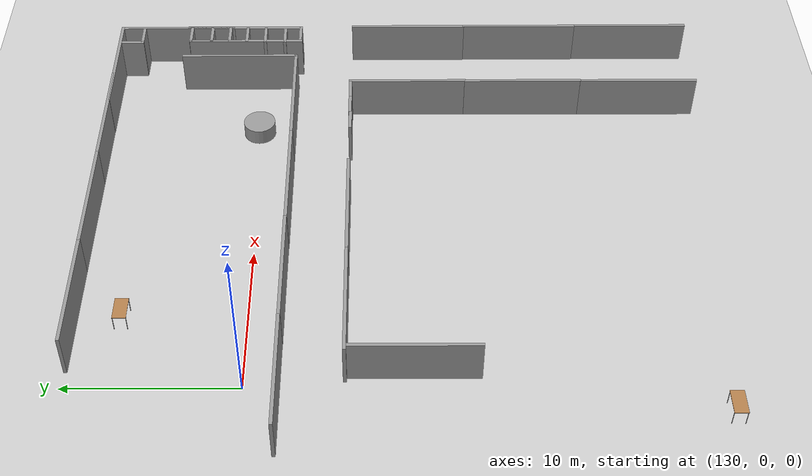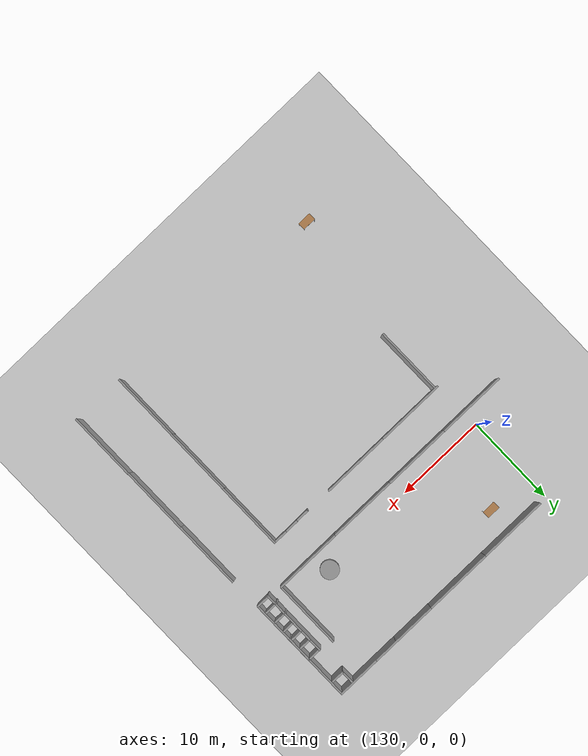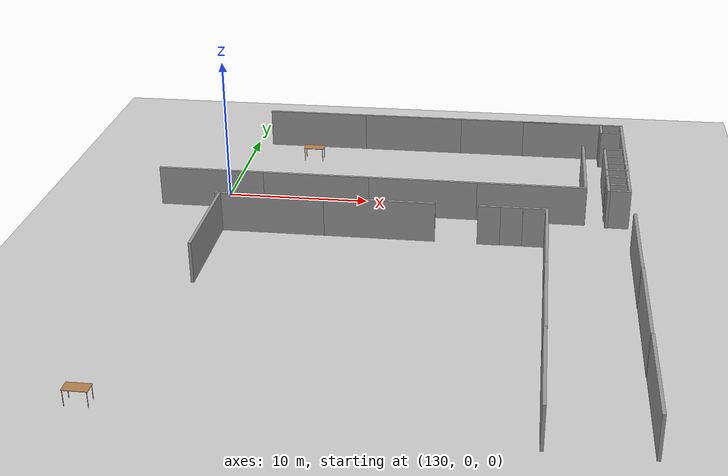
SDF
<sdf version="1.7">
 <world name="default">
  <model name="ground_plane">
   <static>1</static>
   <link name="link">
    <collision name="collision">
     <geometry><plane><normal>0 0 1</normal><size>100 100</size></plane></geometry>
     <surface>
      <contact><collide_bitmask>65535</collide_bitmask></contact>
      <friction><ode><mu>100</mu><mu2>50</mu2></ode></friction>
     </surface>
    </collision>
    <visual name="visual">
     <cast_shadows>0</cast_shadows>
     <geometry><plane><normal>0 0 1</normal><size>100 100</size></plane></geometry>
     <material>
      <script><uri>file://media/materials/scripts/gazebo.material</uri><name>Gazebo/Grey</name></script>
     </material>
    </visual>
   </link>
  </model>
  <model name="grey_wall_clone_1_clone_2_clone_clone_clone_clone_clone_clone_clone_3_clone_0_clone_0_clone_1">
   <static>1</static>
   <link name="link">
    <pose>0 0 1.4 0 -0 0</pose>
    <collision name="collision"><geometry><box><size>7.5 0.2 2.8</size></box></geometry></collision>
    <visual name="visual">
     <cast_shadows>0</cast_shadows>
     <geometry><box><size>7.5 0.2 2.8</size></box></geometry>
     <material>
      <script>
       <uri>model://grey_wall/materials/scripts</uri>
       <uri>model://grey_wall/materials/textures</uri>
       <name>vrc/grey_wall</name>
      </script>
     </material>
    </visual>
   </link>
   <pose>134.179 -5.57064 0 0 -0 0</pose>
  </model>
  <model name="grey_wall_clone_1_clone_2_clone_clone_clone_clone_clone_clone_clone_3_clone_0_clone_0_clone_2">
   <static>1</static>
   <link name="link">
    <pose>0 0 1.4 0 -0 0</pose>
    <collision name="collision"><geometry><box><size>7.5 0.2 2.8</size></box></geometry></collision>
    <visual name="visual">
     <cast_shadows>0</cast_shadows>
     <geometry><box><size>7.5 0.2 2.8</size></box></geometry>
     <material>
      <script>
       <uri>model://grey_wall/materials/scripts</uri>
       <uri>model://grey_wall/materials/textures</uri>
       <name>vrc/grey_wall</name>
      </script>
     </material>
    </visual>
   </link>
   <pose>141.615 -5.57143 0 0 -0 0</pose>
  </model>
  <model name="grey_wall_clone_2_clone_clone_clone_1_clone_clone_0_clone_1_clone_clone_clone_clone_clone_2_clone_clone_4_clone_1_clone_clone_clone_3_clone_0">
   <static>1</static>
   <link name="link">
    <pose>0 0 1.4 0 -0 0</pose>
    <collision name="collision"><geometry><box><size>7.5 0.2 2.8</size></box></geometry></collision>
    <visual name="visual">
     <cast_shadows>0</cast_shadows>
     <geometry><box><size>7.5 0.2 2.8</size></box></geometry>
     <material>
      <script>
       <uri>model://grey_wall/materials/scripts</uri>
       <uri>model://grey_wall/materials/textures</uri>
       <name>vrc/grey_wall</name>
      </script>
     </material>
    </visual>
   </link>
   <pose>152.723 -9.23495 0 0 0 -1.5708</pose>
  </model>
  <model name="grey_wall_clone_2_clone_clone_clone_1_clone_clone_0_clone_1_clone_clone_clone_clone_clone_2_clone_clone_4_clone_1_clone_clone_clone_3_clone_1">
   <static>1</static>
   <link name="link">
    <pose>0 0 1.4 0 -0 0</pose>
    <collision name="collision"><geometry><box><size>7.5 0.2 2.8</size></box></geometry></collision>
    <visual name="visual">
     <cast_shadows>0</cast_shadows>
     <geometry><box><size>7.5 0.2 2.8</size></box></geometry>
     <material>
      <script>
       <uri>model://grey_wall/materials/scripts</uri>
       <uri>model://grey_wall/materials/textures</uri>
       <name>vrc/grey_wall</name>
      </script>
     </material>
    </visual>
   </link>
   <pose>152.707 -16.6656 0 0 0 -1.5708</pose>
  </model>
  <model name="grey_wall_clone_2_clone_clone_clone_1_clone_clone_0_clone_1_clone_clone_clone_clone_clone_2_clone_clone_4_clone_1_clone_clone_clone_3_clone_2">
   <static>1</static>
   <link name="link">
    <pose>0 0 1.4 0 -0 0</pose>
    <collision name="collision"><geometry><box><size>7.5 0.2 2.8</size></box></geometry></collision>
    <visual name="visual">
     <cast_shadows>0</cast_shadows>
     <geometry><box><size>7.5 0.2 2.8</size></box></geometry>
     <material>
      <script>
       <uri>model://grey_wall/materials/scripts</uri>
       <uri>model://grey_wall/materials/textures</uri>
       <name>vrc/grey_wall</name>
      </script>
     </material>
    </visual>
   </link>
   <pose>152.688 -24.1224 0 0 0 -1.5708</pose>
  </model>
  <model name="half_wall_clone_0_clone_clone_clone_9_clone_1_clone_clone_1_clone">
   <link name="link">
    <pose>0 0 1.4 0 -0 0</pose>
    <inertial>
     <mass>1</mass>
     <inertia><ixx>1</ixx><ixy>0</ixy><ixz>0</ixz><iyy>1</iyy><iyz>0</iyz><izz>1</izz></inertia>
    </inertial>
    <visual name="visual">
     <cast_shadows>0</cast_shadows>
     <geometry><box><size>1.5 0.2 2.8</size></box></geometry>
     <material>
      <script>
       <uri>model://grey_wall/materials/scripts</uri>
       <uri>model://grey_wall/materials/textures</uri>
       <name>vrc/grey_wall</name>
      </script>
      <shader type="pixel"><normal_map>__default__</normal_map></shader>
      <ambient>1 1 1 1</ambient>
      <diffuse>1 1 1 1</diffuse>
      <specular>0 0 0 1</specular>
      <emissive>0 0 0 1</emissive>
     </material>
    </visual>
    <collision name="collision">
     <geometry><box><size>1.5 0.2 2.8</size></box></geometry>
     <surface>
      <friction>
       <ode><mu>1</mu><mu2>1</mu2><fdir1>0 0 0</fdir1><slip1>0</slip1><slip2>0</slip2></ode>
       <torsional>
        <coefficient>1</coefficient>
        <patch_radius>0</patch_radius>
        <surface_radius>0</surface_radius>
        <use_patch_radius>1</use_patch_radius>
        <ode><slip>0</slip></ode>
       </torsional>
      </friction>
      <bounce><restitution_coefficient>0</restitution_coefficient><threshold>1e+06</threshold></bounce>
      <contact>
       <collide_without_contact>0</collide_without_contact>
       <collide_without_contact_bitmask>1</collide_without_contact_bitmask>
       <collide_bitmask>1</collide_bitmask>
       <ode>
        <soft_cfm>0</soft_cfm>
        <soft_erp>0.2</soft_erp>
        <kp>1e+13</kp>
        <kd>1</kd>
        <max_vel>0.01</max_vel>
        <min_depth>0</min_depth>
       </ode>
       <bullet>
        <split_impulse>1</split_impulse>
        <split_impulse_penetration_threshold>-0.01</split_impulse_penetration_threshold>
        <soft_cfm>0</soft_cfm>
        <soft_erp>0.2</soft_erp>
        <kp>1e+13</kp>
        <kd>1</kd>
       </bullet>
      </contact>
     </surface>
    </collision>
   </link>
   <static>1</static>
   <pose>151.917 -5.58605 0 0 -0 3.14159</pose>
  </model>
  <model name="half_wall_clone_0_clone_clone_clone_9_clone_1_clone_clone_1_clone_0">
   <link name="link">
    <pose>0 0 1.4 0 -0 0</pose>
    <inertial>
     <mass>1</mass>
     <inertia><ixx>1</ixx><ixy>0</ixy><ixz>0</ixz><iyy>1</iyy><iyz>0</iyz><izz>1</izz></inertia>
    </inertial>
    <visual name="visual">
     <cast_shadows>0</cast_shadows>
     <geometry><box><size>1.5 0.2 2.8</size></box></geometry>
     <material>
      <script>
       <uri>model://grey_wall/materials/scripts</uri>
       <uri>model://grey_wall/materials/textures</uri>
       <name>vrc/grey_wall</name>
      </script>
      <shader type="pixel"><normal_map>__default__</normal_map></shader>
      <ambient>1 1 1 1</ambient>
      <diffuse>1 1 1 1</diffuse>
      <specular>0 0 0 1</specular>
      <emissive>0 0 0 1</emissive>
     </material>
    </visual>
    <collision name="collision">
     <geometry><box><size>1.5 0.2 2.8</size></box></geometry>
     <surface>
      <friction>
       <ode><mu>1</mu><mu2>1</mu2><fdir1>0 0 0</fdir1><slip1>0</slip1><slip2>0</slip2></ode>
       <torsional>
        <coefficient>1</coefficient>
        <patch_radius>0</patch_radius>
        <surface_radius>0</surface_radius>
        <use_patch_radius>1</use_patch_radius>
        <ode><slip>0</slip></ode>
       </torsional>
      </friction>
      <bounce><restitution_coefficient>0</restitution_coefficient><threshold>1e+06</threshold></bounce>
      <contact>
       <collide_without_contact>0</collide_without_contact>
       <collide_without_contact_bitmask>1</collide_without_contact_bitmask>
       <collide_bitmask>1</collide_bitmask>
       <ode>
        <soft_cfm>0</soft_cfm>
        <soft_erp>0.2</soft_erp>
        <kp>1e+13</kp>
        <kd>1</kd>
        <max_vel>0.01</max_vel>
        <min_depth>0</min_depth>
       </ode>
       <bullet>
        <split_impulse>1</split_impulse>
        <split_impulse_penetration_threshold>-0.01</split_impulse_penetration_threshold>
        <soft_cfm>0</soft_cfm>
        <soft_erp>0.2</soft_erp>
        <kp>1e+13</kp>
        <kd>1</kd>
       </bullet>
      </contact>
     </surface>
    </collision>
   </link>
   <static>1</static>
   <pose>150.406 -5.58918 0 0 -0 3.14159</pose>
  </model>
  <model name="half_wall_clone_0_clone_clone_clone_9_clone_1_clone_clone_1_clone_1">
   <link name="link">
    <pose>0 0 1.4 0 -0 0</pose>
    <inertial>
     <mass>1</mass>
     <inertia><ixx>1</ixx><ixy>0</ixy><ixz>0</ixz><iyy>1</iyy><iyz>0</iyz><izz>1</izz></inertia>
    </inertial>
    <visual name="visual">
     <cast_shadows>0</cast_shadows>
     <geometry><box><size>1.5 0.2 2.8</size></box></geometry>
     <material>
      <script>
       <uri>model://grey_wall/materials/scripts</uri>
       <uri>model://grey_wall/materials/textures</uri>
       <name>vrc/grey_wall</name>
      </script>
      <shader type="pixel"><normal_map>__default__</normal_map></shader>
      <ambient>1 1 1 1</ambient>
      <diffuse>1 1 1 1</diffuse>
      <specular>0 0 0 1</specular>
      <emissive>0 0 0 1</emissive>
     </material>
    </visual>
    <collision name="collision">
     <geometry><box><size>1.5 0.2 2.8</size></box></geometry>
     <surface>
      <friction>
       <ode><mu>1</mu><mu2>1</mu2><fdir1>0 0 0</fdir1><slip1>0</slip1><slip2>0</slip2></ode>
       <torsional>
        <coefficient>1</coefficient>
        <patch_radius>0</patch_radius>
        <surface_radius>0</surface_radius>
        <use_patch_radius>1</use_patch_radius>
        <ode><slip>0</slip></ode>
       </torsional>
      </friction>
      <bounce><restitution_coefficient>0</restitution_coefficient><threshold>1e+06</threshold></bounce>
      <contact>
       <collide_without_contact>0</collide_without_contact>
       <collide_without_contact_bitmask>1</collide_without_contact_bitmask>
       <collide_bitmask>1</collide_bitmask>
       <ode>
        <soft_cfm>0</soft_cfm>
        <soft_erp>0.2</soft_erp>
        <kp>1e+13</kp>
        <kd>1</kd>
        <max_vel>0.01</max_vel>
        <min_depth>0</min_depth>
       </ode>
       <bullet>
        <split_impulse>1</split_impulse>
        <split_impulse_penetration_threshold>-0.01</split_impulse_penetration_threshold>
        <soft_cfm>0</soft_cfm>
        <soft_erp>0.2</soft_erp>
        <kp>1e+13</kp>
        <kd>1</kd>
       </bullet>
      </contact>
     </surface>
    </collision>
   </link>
   <static>1</static>
   <pose>148.951 -5.61653 0 0 -0 3.14159</pose>
  </model>
  <model name="grey_wall_clone_2_clone_clone_clone_1_clone_clone_0_clone_1_clone_clone_clone_clone_clone_2_clone_clone_4_clone_1_clone_clone_clone_3_clone_clone">
   <static>1</static>
   <link name="link">
    <pose>0 0 1.4 0 -0 0</pose>
    <collision name="collision"><geometry><box><size>7.5 0.2 2.8</size></box></geometry></collision>
    <visual name="visual">
     <cast_shadows>0</cast_shadows>
     <geometry><box><size>7.5 0.2 2.8</size></box></geometry>
     <material>
      <script>
       <uri>model://grey_wall/materials/scripts</uri>
       <uri>model://grey_wall/materials/textures</uri>
       <name>vrc/grey_wall</name>
      </script>
     </material>
    </visual>
   </link>
   <pose>130.753 -9.34457 0 0 0 -1.5708</pose>
  </model>
  <model name="grey_wall_clone_1_clone_2_clone_clone_clone_clone_clone_clone_clone_3_clone_0_clone_0_clone_clone_2">
   <static>1</static>
   <link name="link">
    <pose>0 0 1.4 0 -0 0</pose>
    <collision name="collision"><geometry><box><size>7.5 0.2 2.8</size></box></geometry></collision>
    <visual name="visual">
     <cast_shadows>0</cast_shadows>
     <geometry><box><size>7.5 0.2 2.8</size></box></geometry>
     <material>
      <script>
       <uri>model://grey_wall/materials/scripts</uri>
       <uri>model://grey_wall/materials/textures</uri>
       <name>vrc/grey_wall</name>
      </script>
     </material>
    </visual>
   </link>
   <pose>129.285 -1.93941 0 0 -0 0</pose>
  </model>
  <model name="grey_wall_clone_1_clone_2_clone_clone_clone_clone_clone_clone_clone_3_clone_0_clone_0_clone_clone_3">
   <static>1</static>
   <link name="link">
    <pose>0 0 1.4 0 -0 0</pose>
    <collision name="collision"><geometry><box><size>7.5 0.2 2.8</size></box></geometry></collision>
    <visual name="visual">
     <cast_shadows>0</cast_shadows>
     <geometry><box><size>7.5 0.2 2.8</size></box></geometry>
     <material>
      <script>
       <uri>model://grey_wall/materials/scripts</uri>
       <uri>model://grey_wall/materials/textures</uri>
       <name>vrc/grey_wall</name>
      </script>
     </material>
    </visual>
   </link>
   <pose>136.726 -1.94807 0 0 -0 0</pose>
  </model>
  <model name="grey_wall_clone_1_clone_2_clone_clone_clone_clone_clone_clone_clone_3_clone_0_clone_0_clone_clone_4">
   <static>1</static>
   <link name="link">
    <pose>0 0 1.4 0 -0 0</pose>
    <collision name="collision"><geometry><box><size>7.5 0.2 2.8</size></box></geometry></collision>
    <visual name="visual">
     <cast_shadows>0</cast_shadows>
     <geometry><box><size>7.5 0.2 2.8</size></box></geometry>
     <material>
      <script>
       <uri>model://grey_wall/materials/scripts</uri>
       <uri>model://grey_wall/materials/textures</uri>
       <name>vrc/grey_wall</name>
      </script>
     </material>
    </visual>
   </link>
   <pose>144.188 -1.96511 0 0 -0 0</pose>
  </model>
  <model name="grey_wall_clone_1_clone_2_clone_clone_clone_clone_clone_clone_clone_3_clone_0_clone_0_clone_clone_5">
   <static>1</static>
   <link name="link">
    <pose>0 0 1.4 0 -0 0</pose>
    <collision name="collision"><geometry><box><size>7.5 0.2 2.8</size></box></geometry></collision>
    <visual name="visual">
     <cast_shadows>0</cast_shadows>
     <geometry><box><size>7.5 0.2 2.8</size></box></geometry>
     <material>
      <script>
       <uri>model://grey_wall/materials/scripts</uri>
       <uri>model://grey_wall/materials/textures</uri>
       <name>vrc/grey_wall</name>
      </script>
     </material>
    </visual>
   </link>
   <pose>151.648 -1.96189 0 0 -0 0</pose>
  </model>
  <model name="grey_wall_clone_1_clone_2_clone_clone_clone_clone_clone_clone_clone_3_clone_0_clone_0_clone_clone_11">
   <static>1</static>
   <link name="link">
    <pose>0 0 1.4 0 -0 0</pose>
    <collision name="collision"><geometry><box><size>7.5 0.2 2.8</size></box></geometry></collision>
    <visual name="visual">
     <cast_shadows>0</cast_shadows>
     <geometry><box><size>7.5 0.2 2.8</size></box></geometry>
     <material>
      <script>
       <uri>model://grey_wall/materials/scripts</uri>
       <uri>model://grey_wall/materials/textures</uri>
       <name>vrc/grey_wall</name>
      </script>
     </material>
    </visual>
   </link>
   <pose>134.857 9.78168 0 0 -0 0</pose>
  </model>
  <model name="grey_wall_clone_1_clone_2_clone_clone_clone_clone_clone_clone_clone_3_clone_0_clone_0_clone_clone_12">
   <static>1</static>
   <link name="link">
    <pose>0 0 1.4 0 -0 0</pose>
    <collision name="collision"><geometry><box><size>7.5 0.2 2.8</size></box></geometry></collision>
    <visual name="visual">
     <cast_shadows>0</cast_shadows>
     <geometry><box><size>7.5 0.2 2.8</size></box></geometry>
     <material>
      <script>
       <uri>model://grey_wall/materials/scripts</uri>
       <uri>model://grey_wall/materials/textures</uri>
       <name>vrc/grey_wall</name>
      </script>
     </material>
    </visual>
   </link>
   <pose>142.308 9.78207 0 0 -0 0</pose>
  </model>
  <model name="grey_wall_clone_1_clone_2_clone_clone_clone_clone_clone_clone_clone_3_clone_0_clone_0_clone_clone_13">
   <static>1</static>
   <link name="link">
    <pose>0 0 1.4 0 -0 0</pose>
    <collision name="collision"><geometry><box><size>7.5 0.2 2.8</size></box></geometry></collision>
    <visual name="visual">
     <cast_shadows>0</cast_shadows>
     <geometry><box><size>7.5 0.2 2.8</size></box></geometry>
     <material>
      <script>
       <uri>model://grey_wall/materials/scripts</uri>
       <uri>model://grey_wall/materials/textures</uri>
       <name>vrc/grey_wall</name>
      </script>
     </material>
    </visual>
   </link>
   <pose>149.795 9.78309 0 0 -0 0</pose>
  </model>
  <model name="grey_wall_clone_1_clone_2_clone_clone_clone_clone_clone_clone_clone_3_clone_0_clone_0_clone_clone_14">
   <static>1</static>
   <link name="link">
    <pose>0 0 1.4 0 -0 0</pose>
    <collision name="collision"><geometry><box><size>7.5 0.2 2.8</size></box></geometry></collision>
    <visual name="visual">
     <cast_shadows>0</cast_shadows>
     <geometry><box><size>7.5 0.2 2.8</size></box></geometry>
     <material>
      <script>
       <uri>model://grey_wall/materials/scripts</uri>
       <uri>model://grey_wall/materials/textures</uri>
       <name>vrc/grey_wall</name>
      </script>
     </material>
    </visual>
   </link>
   <pose>154.606 9.77001 0 0 -0 0</pose>
  </model>
  <model name="grey_wall_clone_2_clone_clone_clone_1_clone_clone_0_clone_1_clone_clone_clone_clone_clone_2_clone_clone_4_clone_1_clone_clone_clone_3_clone_0_clone">
   <static>1</static>
   <link name="link">
    <pose>0 0 1.4 0 -0 0</pose>
    <collision name="collision"><geometry><box><size>7.5 0.2 2.8</size></box></geometry></collision>
    <visual name="visual">
     <cast_shadows>0</cast_shadows>
     <geometry><box><size>7.5 0.2 2.8</size></box></geometry>
     <material>
      <script>
       <uri>model://grey_wall/materials/scripts</uri>
       <uri>model://grey_wall/materials/textures</uri>
       <name>vrc/grey_wall</name>
      </script>
     </material>
    </visual>
   </link>
   <pose>155.32 1.74851 0 0 0 -1.5708</pose>
  </model>
  <model name="grey_wall_clone_2_clone_clone_clone_1_clone_clone_0_clone_1_clone_clone_clone_clone_clone_2_clone_clone_4_clone_1_clone_clone_clone_3_clone_0_clone_0">
   <static>1</static>
   <link name="link">
    <pose>0 0 1.4 0 -0 0</pose>
    <collision name="collision"><geometry><box><size>7.5 0.2 2.8</size></box></geometry></collision>
    <visual name="visual">
     <cast_shadows>0</cast_shadows>
     <geometry><box><size>7.5 0.2 2.8</size></box></geometry>
     <material>
      <script>
       <uri>model://grey_wall/materials/scripts</uri>
       <uri>model://grey_wall/materials/textures</uri>
       <name>vrc/grey_wall</name>
      </script>
     </material>
    </visual>
   </link>
   <pose>158.273 6.01296 0 0 0 -1.5708</pose>
  </model>
  <model name="grey_wall_clone_2_clone_clone_clone_1_clone_clone_0_clone_1_clone_clone_clone_clone_clone_2_clone_clone_4_clone_1_clone_clone_clone_3_clone_0_clone_1">
   <static>1</static>
   <link name="link">
    <pose>0 0 1.4 0 -0 0</pose>
    <collision name="collision"><geometry><box><size>7.5 0.2 2.8</size></box></geometry></collision>
    <visual name="visual">
     <cast_shadows>0</cast_shadows>
     <geometry><box><size>7.5 0.2 2.8</size></box></geometry>
     <material>
      <script>
       <uri>model://grey_wall/materials/scripts</uri>
       <uri>model://grey_wall/materials/textures</uri>
       <name>vrc/grey_wall</name>
      </script>
     </material>
    </visual>
   </link>
   <pose>158.287 1.6348 0 0 0 -1.5708</pose>
  </model>
  <model name="half_wall_clone_0_clone_clone_clone_9_clone_1_clone_clone_clone_1_clone">
   <link name="link">
    <pose>0 0 1.4 0 -0 0</pose>
    <inertial>
     <mass>1</mass>
     <inertia><ixx>1</ixx><ixy>0</ixy><ixz>0</ixz><iyy>1</iyy><iyz>0</iyz><izz>1</izz></inertia>
    </inertial>
    <visual name="visual">
     <cast_shadows>0</cast_shadows>
     <geometry><box><size>1.5 0.2 2.8</size></box></geometry>
     <material>
      <script>
       <uri>model://grey_wall/materials/scripts</uri>
       <uri>model://grey_wall/materials/textures</uri>
       <name>vrc/grey_wall</name>
      </script>
      <shader type="pixel"><normal_map>__default__</normal_map></shader>
      <ambient>1 1 1 1</ambient>
      <diffuse>1 1 1 1</diffuse>
      <specular>0 0 0 1</specular>
      <emissive>0 0 0 1</emissive>
     </material>
    </visual>
    <collision name="collision">
     <geometry><box><size>1.5 0.2 2.8</size></box></geometry>
     <surface>
      <friction>
       <ode><mu>1</mu><mu2>1</mu2><fdir1>0 0 0</fdir1><slip1>0</slip1><slip2>0</slip2></ode>
       <torsional>
        <coefficient>1</coefficient>
        <patch_radius>0</patch_radius>
        <surface_radius>0</surface_radius>
        <use_patch_radius>1</use_patch_radius>
        <ode><slip>0</slip></ode>
       </torsional>
      </friction>
      <bounce><restitution_coefficient>0</restitution_coefficient><threshold>1e+06</threshold></bounce>
      <contact>
       <collide_without_contact>0</collide_without_contact>
       <collide_without_contact_bitmask>1</collide_without_contact_bitmask>
       <collide_bitmask>1</collide_bitmask>
       <ode>
        <soft_cfm>0</soft_cfm>
        <soft_erp>0.2</soft_erp>
        <kp>1e+13</kp>
        <kd>1</kd>
        <max_vel>0.01</max_vel>
        <min_depth>0</min_depth>
       </ode>
       <bullet>
        <split_impulse>1</split_impulse>
        <split_impulse_penetration_threshold>-0.01</split_impulse_penetration_threshold>
        <soft_cfm>0</soft_cfm>
        <soft_erp>0.2</soft_erp>
        <kp>1e+13</kp>
        <kd>1</kd>
       </bullet>
      </contact>
     </surface>
    </collision>
   </link>
   <static>1</static>
   <pose>157.468 8.29059 0 0 -0 3.14159</pose>
  </model>
  <model name="half_wall_clone_0_clone_clone_clone_9_clone_1_clone_clone_clone_1_clone_0">
   <link name="link">
    <pose>0 0 1.4 0 -0 0</pose>
    <inertial>
     <mass>1</mass>
     <inertia><ixx>1</ixx><ixy>0</ixy><ixz>0</ixz><iyy>1</iyy><iyz>0</iyz><izz>1</izz></inertia>
    </inertial>
    <visual name="visual">
     <cast_shadows>0</cast_shadows>
     <geometry><box><size>1.5 0.2 2.8</size></box></geometry>
     <material>
      <script>
       <uri>model://grey_wall/materials/scripts</uri>
       <uri>model://grey_wall/materials/textures</uri>
       <name>vrc/grey_wall</name>
      </script>
      <shader type="pixel"><normal_map>__default__</normal_map></shader>
      <ambient>1 1 1 1</ambient>
      <diffuse>1 1 1 1</diffuse>
      <specular>0 0 0 1</specular>
      <emissive>0 0 0 1</emissive>
     </material>
    </visual>
    <collision name="collision">
     <geometry><box><size>1.5 0.2 2.8</size></box></geometry>
     <surface>
      <friction>
       <ode><mu>1</mu><mu2>1</mu2><fdir1>0 0 0</fdir1><slip1>0</slip1><slip2>0</slip2></ode>
       <torsional>
        <coefficient>1</coefficient>
        <patch_radius>0</patch_radius>
        <surface_radius>0</surface_radius>
        <use_patch_radius>1</use_patch_radius>
        <ode><slip>0</slip></ode>
       </torsional>
      </friction>
      <bounce><restitution_coefficient>0</restitution_coefficient><threshold>1e+06</threshold></bounce>
      <contact>
       <collide_without_contact>0</collide_without_contact>
       <collide_without_contact_bitmask>1</collide_without_contact_bitmask>
       <collide_bitmask>1</collide_bitmask>
       <ode>
        <soft_cfm>0</soft_cfm>
        <soft_erp>0.2</soft_erp>
        <kp>1e+13</kp>
        <kd>1</kd>
        <max_vel>0.01</max_vel>
        <min_depth>0</min_depth>
       </ode>
       <bullet>
        <split_impulse>1</split_impulse>
        <split_impulse_penetration_threshold>-0.01</split_impulse_penetration_threshold>
        <soft_cfm>0</soft_cfm>
        <soft_erp>0.2</soft_erp>
        <kp>1e+13</kp>
        <kd>1</kd>
       </bullet>
      </contact>
     </surface>
    </collision>
   </link>
   <static>1</static>
   <pose>156.739 8.94676 0 0 -0 1.57079</pose>
  </model>
  <model name="half_wall_clone_0_clone_clone_clone_9_clone_1_clone_clone_clone_1_clone_1">
   <link name="link">
    <pose>0 0 1.4 0 -0 0</pose>
    <inertial>
     <mass>1</mass>
     <inertia><ixx>1</ixx><ixy>0</ixy><ixz>0</ixz><iyy>1</iyy><iyz>0</iyz><izz>1</izz></inertia>
    </inertial>
    <visual name="visual">
     <cast_shadows>0</cast_shadows>
     <geometry><box><size>1.5 0.2 2.8</size></box></geometry>
     <material>
      <script>
       <uri>model://grey_wall/materials/scripts</uri>
       <uri>model://grey_wall/materials/textures</uri>
       <name>vrc/grey_wall</name>
      </script>
      <shader type="pixel"><normal_map>__default__</normal_map></shader>
      <ambient>1 1 1 1</ambient>
      <diffuse>1 1 1 1</diffuse>
      <specular>0 0 0 1</specular>
      <emissive>0 0 0 1</emissive>
     </material>
    </visual>
    <collision name="collision">
     <geometry><box><size>1.5 0.2 2.8</size></box></geometry>
     <surface>
      <friction>
       <ode><mu>1</mu><mu2>1</mu2><fdir1>0 0 0</fdir1><slip1>0</slip1><slip2>0</slip2></ode>
       <torsional>
        <coefficient>1</coefficient>
        <patch_radius>0</patch_radius>
        <surface_radius>0</surface_radius>
        <use_patch_radius>1</use_patch_radius>
        <ode><slip>0</slip></ode>
       </torsional>
      </friction>
      <bounce><restitution_coefficient>0</restitution_coefficient><threshold>1e+06</threshold></bounce>
      <contact>
       <collide_without_contact>0</collide_without_contact>
       <collide_without_contact_bitmask>1</collide_without_contact_bitmask>
       <collide_bitmask>1</collide_bitmask>
       <ode>
        <soft_cfm>0</soft_cfm>
        <soft_erp>0.2</soft_erp>
        <kp>1e+13</kp>
        <kd>1</kd>
        <max_vel>0.01</max_vel>
        <min_depth>0</min_depth>
       </ode>
       <bullet>
        <split_impulse>1</split_impulse>
        <split_impulse_penetration_threshold>-0.01</split_impulse_penetration_threshold>
        <soft_cfm>0</soft_cfm>
        <soft_erp>0.2</soft_erp>
        <kp>1e+13</kp>
        <kd>1</kd>
       </bullet>
      </contact>
     </surface>
    </collision>
   </link>
   <static>1</static>
   <pose>157.566 5.10254 0 0 -0 3.14159</pose>
  </model>
  <model name="half_wall_clone_0_clone_clone_clone_9_clone_1_clone_clone_clone_1_clone_2">
   <link name="link">
    <pose>0 0 1.4 0 -0 0</pose>
    <inertial>
     <mass>1</mass>
     <inertia><ixx>1</ixx><ixy>0</ixy><ixz>0</ixz><iyy>1</iyy><iyz>0</iyz><izz>1</izz></inertia>
    </inertial>
    <visual name="visual">
     <cast_shadows>0</cast_shadows>
     <geometry><box><size>1.5 0.2 2.8</size></box></geometry>
     <material>
      <script>
       <uri>model://grey_wall/materials/scripts</uri>
       <uri>model://grey_wall/materials/textures</uri>
       <name>vrc/grey_wall</name>
      </script>
      <shader type="pixel"><normal_map>__default__</normal_map></shader>
      <ambient>1 1 1 1</ambient>
      <diffuse>1 1 1 1</diffuse>
      <specular>0 0 0 1</specular>
      <emissive>0 0 0 1</emissive>
     </material>
    </visual>
    <collision name="collision">
     <geometry><box><size>1.5 0.2 2.8</size></box></geometry>
     <surface>
      <friction>
       <ode><mu>1</mu><mu2>1</mu2><fdir1>0 0 0</fdir1><slip1>0</slip1><slip2>0</slip2></ode>
       <torsional>
        <coefficient>1</coefficient>
        <patch_radius>0</patch_radius>
        <surface_radius>0</surface_radius>
        <use_patch_radius>1</use_patch_radius>
        <ode><slip>0</slip></ode>
       </torsional>
      </friction>
      <bounce><restitution_coefficient>0</restitution_coefficient><threshold>1e+06</threshold></bounce>
      <contact>
       <collide_without_contact>0</collide_without_contact>
       <collide_without_contact_bitmask>1</collide_without_contact_bitmask>
       <collide_bitmask>1</collide_bitmask>
       <ode>
        <soft_cfm>0</soft_cfm>
        <soft_erp>0.2</soft_erp>
        <kp>1e+13</kp>
        <kd>1</kd>
        <max_vel>0.01</max_vel>
        <min_depth>0</min_depth>
       </ode>
       <bullet>
        <split_impulse>1</split_impulse>
        <split_impulse_penetration_threshold>-0.01</split_impulse_penetration_threshold>
        <soft_cfm>0</soft_cfm>
        <soft_erp>0.2</soft_erp>
        <kp>1e+13</kp>
        <kd>1</kd>
       </bullet>
      </contact>
     </surface>
    </collision>
   </link>
   <static>1</static>
   <pose>157.566 3.72366 0 0 -0 3.14159</pose>
  </model>
  <model name="half_wall_clone_0_clone_clone_clone_9_clone_1_clone_clone_clone_1_clone_3">
   <link name="link">
    <pose>0 0 1.4 0 -0 0</pose>
    <inertial>
     <mass>1</mass>
     <inertia><ixx>1</ixx><ixy>0</ixy><ixz>0</ixz><iyy>1</iyy><iyz>0</iyz><izz>1</izz></inertia>
    </inertial>
    <visual name="visual">
     <cast_shadows>0</cast_shadows>
     <geometry><box><size>1.5 0.2 2.8</size></box></geometry>
     <material>
      <script>
       <uri>model://grey_wall/materials/scripts</uri>
       <uri>model://grey_wall/materials/textures</uri>
       <name>vrc/grey_wall</name>
      </script>
      <shader type="pixel"><normal_map>__default__</normal_map></shader>
      <ambient>1 1 1 1</ambient>
      <diffuse>1 1 1 1</diffuse>
      <specular>0 0 0 1</specular>
      <emissive>0 0 0 1</emissive>
     </material>
    </visual>
    <collision name="collision">
     <geometry><box><size>1.5 0.2 2.8</size></box></geometry>
     <surface>
      <friction>
       <ode><mu>1</mu><mu2>1</mu2><fdir1>0 0 0</fdir1><slip1>0</slip1><slip2>0</slip2></ode>
       <torsional>
        <coefficient>1</coefficient>
        <patch_radius>0</patch_radius>
        <surface_radius>0</surface_radius>
        <use_patch_radius>1</use_patch_radius>
        <ode><slip>0</slip></ode>
       </torsional>
      </friction>
      <bounce><restitution_coefficient>0</restitution_coefficient><threshold>1e+06</threshold></bounce>
      <contact>
       <collide_without_contact>0</collide_without_contact>
       <collide_without_contact_bitmask>1</collide_without_contact_bitmask>
       <collide_bitmask>1</collide_bitmask>
       <ode>
        <soft_cfm>0</soft_cfm>
        <soft_erp>0.2</soft_erp>
        <kp>1e+13</kp>
        <kd>1</kd>
        <max_vel>0.01</max_vel>
        <min_depth>0</min_depth>
       </ode>
       <bullet>
        <split_impulse>1</split_impulse>
        <split_impulse_penetration_threshold>-0.01</split_impulse_penetration_threshold>
        <soft_cfm>0</soft_cfm>
        <soft_erp>0.2</soft_erp>
        <kp>1e+13</kp>
        <kd>1</kd>
       </bullet>
      </contact>
     </surface>
    </collision>
   </link>
   <static>1</static>
   <pose>157.576 2.52987 0 0 -0 3.14159</pose>
  </model>
  <model name="half_wall_clone_0_clone_clone_clone_9_clone_1_clone_clone_clone_1_clone_4">
   <link name="link">
    <pose>0 0 1.4 0 -0 0</pose>
    <inertial>
     <mass>1</mass>
     <inertia><ixx>1</ixx><ixy>0</ixy><ixz>0</ixz><iyy>1</iyy><iyz>0</iyz><izz>1</izz></inertia>
    </inertial>
    <visual name="visual">
     <cast_shadows>0</cast_shadows>
     <geometry><box><size>1.5 0.2 2.8</size></box></geometry>
     <material>
      <script>
       <uri>model://grey_wall/materials/scripts</uri>
       <uri>model://grey_wall/materials/textures</uri>
       <name>vrc/grey_wall</name>
      </script>
      <shader type="pixel"><normal_map>__default__</normal_map></shader>
      <ambient>1 1 1 1</ambient>
      <diffuse>1 1 1 1</diffuse>
      <specular>0 0 0 1</specular>
      <emissive>0 0 0 1</emissive>
     </material>
    </visual>
    <collision name="collision">
     <geometry><box><size>1.5 0.2 2.8</size></box></geometry>
     <surface>
      <friction>
       <ode><mu>1</mu><mu2>1</mu2><fdir1>0 0 0</fdir1><slip1>0</slip1><slip2>0</slip2></ode>
       <torsional>
        <coefficient>1</coefficient>
        <patch_radius>0</patch_radius>
        <surface_radius>0</surface_radius>
        <use_patch_radius>1</use_patch_radius>
        <ode><slip>0</slip></ode>
       </torsional>
      </friction>
      <bounce><restitution_coefficient>0</restitution_coefficient><threshold>1e+06</threshold></bounce>
      <contact>
       <collide_without_contact>0</collide_without_contact>
       <collide_without_contact_bitmask>1</collide_without_contact_bitmask>
       <collide_bitmask>1</collide_bitmask>
       <ode>
        <soft_cfm>0</soft_cfm>
        <soft_erp>0.2</soft_erp>
        <kp>1e+13</kp>
        <kd>1</kd>
        <max_vel>0.01</max_vel>
        <min_depth>0</min_depth>
       </ode>
       <bullet>
        <split_impulse>1</split_impulse>
        <split_impulse_penetration_threshold>-0.01</split_impulse_penetration_threshold>
        <soft_cfm>0</soft_cfm>
        <soft_erp>0.2</soft_erp>
        <kp>1e+13</kp>
        <kd>1</kd>
       </bullet>
      </contact>
     </surface>
    </collision>
   </link>
   <static>1</static>
   <pose>157.55 1.37724 0 0 -0 3.14159</pose>
  </model>
  <model name="half_wall_clone_0_clone_clone_clone_9_clone_1_clone_clone_clone_1_clone_5">
   <link name="link">
    <pose>0 0 1.4 0 -0 0</pose>
    <inertial>
     <mass>1</mass>
     <inertia><ixx>1</ixx><ixy>0</ixy><ixz>0</ixz><iyy>1</iyy><iyz>0</iyz><izz>1</izz></inertia>
    </inertial>
    <visual name="visual">
     <cast_shadows>0</cast_shadows>
     <geometry><box><size>1.5 0.2 2.8</size></box></geometry>
     <material>
      <script>
       <uri>model://grey_wall/materials/scripts</uri>
       <uri>model://grey_wall/materials/textures</uri>
       <name>vrc/grey_wall</name>
      </script>
      <shader type="pixel"><normal_map>__default__</normal_map></shader>
      <ambient>1 1 1 1</ambient>
      <diffuse>1 1 1 1</diffuse>
      <specular>0 0 0 1</specular>
      <emissive>0 0 0 1</emissive>
     </material>
    </visual>
    <collision name="collision">
     <geometry><box><size>1.5 0.2 2.8</size></box></geometry>
     <surface>
      <friction>
       <ode><mu>1</mu><mu2>1</mu2><fdir1>0 0 0</fdir1><slip1>0</slip1><slip2>0</slip2></ode>
       <torsional>
        <coefficient>1</coefficient>
        <patch_radius>0</patch_radius>
        <surface_radius>0</surface_radius>
        <use_patch_radius>1</use_patch_radius>
        <ode><slip>0</slip></ode>
       </torsional>
      </friction>
      <bounce><restitution_coefficient>0</restitution_coefficient><threshold>1e+06</threshold></bounce>
      <contact>
       <collide_without_contact>0</collide_without_contact>
       <collide_without_contact_bitmask>1</collide_without_contact_bitmask>
       <collide_bitmask>1</collide_bitmask>
       <ode>
        <soft_cfm>0</soft_cfm>
        <soft_erp>0.2</soft_erp>
        <kp>1e+13</kp>
        <kd>1</kd>
        <max_vel>0.01</max_vel>
        <min_depth>0</min_depth>
       </ode>
       <bullet>
        <split_impulse>1</split_impulse>
        <split_impulse_penetration_threshold>-0.01</split_impulse_penetration_threshold>
        <soft_cfm>0</soft_cfm>
        <soft_erp>0.2</soft_erp>
        <kp>1e+13</kp>
        <kd>1</kd>
       </bullet>
      </contact>
     </surface>
    </collision>
   </link>
   <static>1</static>
   <pose>157.509 0.155126 0 0 -0 3.14159</pose>
  </model>
  <model name="half_wall_clone_0_clone_clone_clone_9_clone_1_clone_clone_clone_1_clone_6">
   <link name="link">
    <pose>0 0 1.4 0 -0 0</pose>
    <inertial>
     <mass>1</mass>
     <inertia><ixx>1</ixx><ixy>0</ixy><ixz>0</ixz><iyy>1</iyy><iyz>0</iyz><izz>1</izz></inertia>
    </inertial>
    <visual name="visual">
     <cast_shadows>0</cast_shadows>
     <geometry><box><size>1.5 0.2 2.8</size></box></geometry>
     <material>
      <script>
       <uri>model://grey_wall/materials/scripts</uri>
       <uri>model://grey_wall/materials/textures</uri>
       <name>vrc/grey_wall</name>
      </script>
      <shader type="pixel"><normal_map>__default__</normal_map></shader>
      <ambient>1 1 1 1</ambient>
      <diffuse>1 1 1 1</diffuse>
      <specular>0 0 0 1</specular>
      <emissive>0 0 0 1</emissive>
     </material>
    </visual>
    <collision name="collision">
     <geometry><box><size>1.5 0.2 2.8</size></box></geometry>
     <surface>
      <friction>
       <ode><mu>1</mu><mu2>1</mu2><fdir1>0 0 0</fdir1><slip1>0</slip1><slip2>0</slip2></ode>
       <torsional>
        <coefficient>1</coefficient>
        <patch_radius>0</patch_radius>
        <surface_radius>0</surface_radius>
        <use_patch_radius>1</use_patch_radius>
        <ode><slip>0</slip></ode>
       </torsional>
      </friction>
      <bounce><restitution_coefficient>0</restitution_coefficient><threshold>1e+06</threshold></bounce>
      <contact>
       <collide_without_contact>0</collide_without_contact>
       <collide_without_contact_bitmask>1</collide_without_contact_bitmask>
       <collide_bitmask>1</collide_bitmask>
       <ode>
        <soft_cfm>0</soft_cfm>
        <soft_erp>0.2</soft_erp>
        <kp>1e+13</kp>
        <kd>1</kd>
        <max_vel>0.01</max_vel>
        <min_depth>0</min_depth>
       </ode>
       <bullet>
        <split_impulse>1</split_impulse>
        <split_impulse_penetration_threshold>-0.01</split_impulse_penetration_threshold>
        <soft_cfm>0</soft_cfm>
        <soft_erp>0.2</soft_erp>
        <kp>1e+13</kp>
        <kd>1</kd>
       </bullet>
      </contact>
     </surface>
    </collision>
   </link>
   <static>1</static>
   <pose>157.441 -1.14956 0 0 -0 3.14159</pose>
  </model>
  <model name="grey_wall_clone_2_clone_clone_clone_1_clone_clone_0_clone_1_clone_clone_clone_clone_clone_2_clone_clone_4_clone_1_clone_clone_clone_3_clone_0_clone_clone">
   <static>1</static>
   <link name="link">
    <pose>0 0 1.4 0 -0 0</pose>
    <collision name="collision"><geometry><box><size>7.5 0.2 2.8</size></box></geometry></collision>
    <visual name="visual">
     <cast_shadows>0</cast_shadows>
     <geometry><box><size>7.5 0.2 2.8</size></box></geometry>
     <material>
      <script>
       <uri>model://grey_wall/materials/scripts</uri>
       <uri>model://grey_wall/materials/textures</uri>
       <name>vrc/grey_wall</name>
      </script>
     </material>
    </visual>
   </link>
   <pose>156.867 1.42794 0 0 0 -1.5708</pose>
  </model>
  <model name="half_wall_clone_0_clone_clone_clone_9_clone_1_clone_clone_clone_1_clone_6_clone">
   <link name="link">
    <pose>0 0 1.4 0 -0 0</pose>
    <inertial>
     <mass>1</mass>
     <inertia><ixx>1</ixx><ixy>0</ixy><ixz>0</ixz><iyy>1</iyy><iyz>0</iyz><izz>1</izz></inertia>
    </inertial>
    <visual name="visual">
     <cast_shadows>0</cast_shadows>
     <geometry><box><size>1.5 0.2 2.8</size></box></geometry>
     <material>
      <script>
       <uri>model://grey_wall/materials/scripts</uri>
       <uri>model://grey_wall/materials/textures</uri>
       <name>vrc/grey_wall</name>
      </script>
      <shader type="pixel"><normal_map>__default__</normal_map></shader>
      <ambient>1 1 1 1</ambient>
      <diffuse>1 1 1 1</diffuse>
      <specular>0 0 0 1</specular>
      <emissive>0 0 0 1</emissive>
     </material>
    </visual>
    <collision name="collision">
     <geometry><box><size>1.5 0.2 2.8</size></box></geometry>
     <surface>
      <friction>
       <ode><mu>1</mu><mu2>1</mu2><fdir1>0 0 0</fdir1><slip1>0</slip1><slip2>0</slip2></ode>
       <torsional>
        <coefficient>1</coefficient>
        <patch_radius>0</patch_radius>
        <surface_radius>0</surface_radius>
        <use_patch_radius>1</use_patch_radius>
        <ode><slip>0</slip></ode>
       </torsional>
      </friction>
      <bounce><restitution_coefficient>0</restitution_coefficient><threshold>1e+06</threshold></bounce>
      <contact>
       <collide_without_contact>0</collide_without_contact>
       <collide_without_contact_bitmask>1</collide_without_contact_bitmask>
       <collide_bitmask>1</collide_bitmask>
       <ode>
        <soft_cfm>0</soft_cfm>
        <soft_erp>0.2</soft_erp>
        <kp>1e+13</kp>
        <kd>1</kd>
        <max_vel>0.01</max_vel>
        <min_depth>0</min_depth>
       </ode>
       <bullet>
        <split_impulse>1</split_impulse>
        <split_impulse_penetration_threshold>-0.01</split_impulse_penetration_threshold>
        <soft_cfm>0</soft_cfm>
        <soft_erp>0.2</soft_erp>
        <kp>1e+13</kp>
        <kd>1</kd>
       </bullet>
      </contact>
     </surface>
    </collision>
   </link>
   <static>1</static>
   <pose>157.63 -2.17475 0 0 -0 3.14159</pose>
  </model>
  <model name="unit_cylinder">
   <link name="link">
    <inertial>
     <mass>1</mass>
     <inertia><ixx>0.145833</ixx><ixy>0</ixy><ixz>0</ixz><iyy>0.145833</iyy><iyz>0</iyz><izz>0.125</izz></inertia>
    </inertial>
    <visual name="visual">
     <geometry><cylinder><radius>1</radius><length>1</length></cylinder></geometry>
     <material>
      <script><name>Gazebo/Grey</name><uri>file://media/materials/scripts/gazebo.material</uri></script>
      <shader type="pixel"><normal_map>__default__</normal_map></shader>
      <ambient>0.3 0.3 0.3 1</ambient>
      <diffuse>0.7 0.7 0.7 1</diffuse>
      <specular>0.01 0.01 0.01 1</specular>
      <emissive>0 0 0 1</emissive>
     </material>
    </visual>
    <collision name="collision">
     <geometry><cylinder><radius>1</radius><length>1</length></cylinder></geometry>
     <surface>
      <friction>
       <ode><mu>1</mu><mu2>1</mu2><fdir1>0 0 0</fdir1><slip1>0</slip1><slip2>0</slip2></ode>
       <torsional>
        <coefficient>1</coefficient>
        <patch_radius>0</patch_radius>
        <surface_radius>0</surface_radius>
        <use_patch_radius>1</use_patch_radius>
        <ode><slip>0</slip></ode>
       </torsional>
      </friction>
      <bounce><restitution_coefficient>0</restitution_coefficient><threshold>1e+06</threshold></bounce>
      <contact>
       <collide_without_contact>0</collide_without_contact>
       <collide_without_contact_bitmask>1</collide_without_contact_bitmask>
       <collide_bitmask>1</collide_bitmask>
       <ode>
        <soft_cfm>0</soft_cfm>
        <soft_erp>0.2</soft_erp>
        <kp>1e+13</kp>
        <kd>1</kd>
        <max_vel>0.01</max_vel>
        <min_depth>0</min_depth>
       </ode>
       <bullet>
        <split_impulse>1</split_impulse>
        <split_impulse_penetration_threshold>-0.01</split_impulse_penetration_threshold>
        <soft_cfm>0</soft_cfm>
        <soft_erp>0.2</soft_erp>
        <kp>1e+13</kp>
        <kd>1</kd>
       </bullet>
      </contact>
     </surface>
    </collision>
   </link>
   <static>0</static>
   <pose>150.79 0.264863 0.499994 4e-06 -3e-06 0.000475</pose>
  </model>
  <model name="grey_wall_clone_2_clone_clone_clone_1_clone_clone_0_clone_1_clone_clone_clone_clone_clone_2_clone_clone_4_clone_1_clone_clone_clone_3_clone_1_clone">
   <static>1</static>
   <link name="link">
    <pose>0 0 1.4 0 -0 0</pose>
    <collision name="collision"><geometry><box><size>7.5 0.2 2.8</size></box></geometry></collision>
    <visual name="visual">
     <cast_shadows>0</cast_shadows>
     <geometry><box><size>7.5 0.2 2.8</size></box></geometry>
     <material>
      <script>
       <uri>model://grey_wall/materials/scripts</uri>
       <uri>model://grey_wall/materials/textures</uri>
       <name>vrc/grey_wall</name>
      </script>
     </material>
    </visual>
   </link>
   <pose>158.407 -9.35545 0 0 0 -1.5708</pose>
  </model>
  <model name="grey_wall_clone_2_clone_clone_clone_1_clone_clone_0_clone_1_clone_clone_clone_clone_clone_2_clone_clone_4_clone_1_clone_clone_clone_3_clone_1_clone_0">
   <static>1</static>
   <link name="link">
    <pose>0 0 1.4 0 -0 0</pose>
    <collision name="collision"><geometry><box><size>7.5 0.2 2.8</size></box></geometry></collision>
    <visual name="visual">
     <cast_shadows>0</cast_shadows>
     <geometry><box><size>7.5 0.2 2.8</size></box></geometry>
     <material>
      <script>
       <uri>model://grey_wall/materials/scripts</uri>
       <uri>model://grey_wall/materials/textures</uri>
       <name>vrc/grey_wall</name>
      </script>
     </material>
    </visual>
   </link>
   <pose>158.424 -16.7844 0 0 0 -1.5708</pose>
  </model>
  <model name="grey_wall_clone_2_clone_clone_clone_1_clone_clone_0_clone_1_clone_clone_clone_clone_clone_2_clone_clone_4_clone_1_clone_clone_clone_3_clone_1_clone_1">
   <static>1</static>
   <link name="link">
    <pose>0 0 1.4 0 -0 0</pose>
    <collision name="collision"><geometry><box><size>7.5 0.2 2.8</size></box></geometry></collision>
    <visual name="visual">
     <cast_shadows>0</cast_shadows>
     <geometry><box><size>7.5 0.2 2.8</size></box></geometry>
     <material>
      <script>
       <uri>model://grey_wall/materials/scripts</uri>
       <uri>model://grey_wall/materials/textures</uri>
       <name>vrc/grey_wall</name>
      </script>
     </material>
    </visual>
   </link>
   <pose>158.454 -24.22 0 0 0 -1.5708</pose>
  </model>
  <model name="table">
   <static>1</static>
   <link name="link">
    <collision name="surface">
     <pose>0 0 1 0 -0 0</pose>
     <geometry><box><size>1.5 0.8 0.03</size></box></geometry>
     <surface><friction><ode><mu>0.6</mu><mu2>0.6</mu2></ode></friction></surface>
    </collision>
    <visual name="visual1">
     <pose>0 0 1 0 -0 0</pose>
     <geometry><box><size>1.5 0.8 0.03</size></box></geometry>
     <material>
      <script><uri>file://media/materials/scripts/gazebo.material</uri><name>Gazebo/Wood</name></script>
     </material>
    </visual>
    <collision name="front_left_leg">
     <pose>0.68 0.38 0.5 0 -0 0</pose>
     <geometry><cylinder><radius>0.02</radius><length>1</length></cylinder></geometry>
    </collision>
    <visual name="front_left_leg">
     <pose>0.68 0.38 0.5 0 -0 0</pose>
     <geometry><cylinder><radius>0.02</radius><length>1</length></cylinder></geometry>
     <material>
      <script><uri>file://media/materials/scripts/gazebo.material</uri><name>Gazebo/Grey</name></script>
     </material>
    </visual>
    <collision name="front_right_leg">
     <pose>0.68 -0.38 0.5 0 -0 0</pose>
     <geometry><cylinder><radius>0.02</radius><length>1</length></cylinder></geometry>
    </collision>
    <visual name="front_right_leg">
     <pose>0.68 -0.38 0.5 0 -0 0</pose>
     <geometry><cylinder><radius>0.02</radius><length>1</length></cylinder></geometry>
     <material>
      <script><uri>file://media/materials/scripts/gazebo.material</uri><name>Gazebo/Grey</name></script>
     </material>
    </visual>
    <collision name="back_right_leg">
     <pose>-0.68 -0.38 0.5 0 -0 0</pose>
     <geometry><cylinder><radius>0.02</radius><length>1</length></cylinder></geometry>
    </collision>
    <visual name="back_right_leg">
     <pose>-0.68 -0.38 0.5 0 -0 0</pose>
     <geometry><cylinder><radius>0.02</radius><length>1</length></cylinder></geometry>
     <material>
      <script><uri>file://media/materials/scripts/gazebo.material</uri><name>Gazebo/Grey</name></script>
     </material>
    </visual>
    <collision name="back_left_leg">
     <pose>-0.68 0.38 0.5 0 -0 0</pose>
     <geometry><cylinder><radius>0.02</radius><length>1</length></cylinder></geometry>
    </collision>
    <visual name="back_left_leg">
     <pose>-0.68 0.38 0.5 0 -0 0</pose>
     <geometry><cylinder><radius>0.02</radius><length>1</length></cylinder></geometry>
     <material>
      <script><uri>file://media/materials/scripts/gazebo.material</uri><name>Gazebo/Grey</name></script>
     </material>
    </visual>
   </link>
   <pose>134.93 7.14133 0 0 -0 0</pose>
  </model>
  <model name="table_clone">
   <static>1</static>
   <link name="link">
    <collision name="surface">
     <pose>0 0 1 0 -0 0</pose>
     <geometry><box><size>1.5 0.8 0.03</size></box></geometry>
     <surface><friction><ode><mu>0.6</mu><mu2>0.6</mu2></ode></friction></surface>
    </collision>
    <visual name="visual1">
     <pose>0 0 1 0 -0 0</pose>
     <geometry><box><size>1.5 0.8 0.03</size></box></geometry>
     <material>
      <script><uri>file://media/materials/scripts/gazebo.material</uri><name>Gazebo/Wood</name></script>
     </material>
    </visual>
    <collision name="front_left_leg">
     <pose>0.68 0.38 0.5 0 -0 0</pose>
     <geometry><cylinder><radius>0.02</radius><length>1</length></cylinder></geometry>
    </collision>
    <visual name="front_left_leg">
     <pose>0.68 0.38 0.5 0 -0 0</pose>
     <geometry><cylinder><radius>0.02</radius><length>1</length></cylinder></geometry>
     <material>
      <script><uri>file://media/materials/scripts/gazebo.material</uri><name>Gazebo/Grey</name></script>
     </material>
    </visual>
    <collision name="front_right_leg">
     <pose>0.68 -0.38 0.5 0 -0 0</pose>
     <geometry><cylinder><radius>0.02</radius><length>1</length></cylinder></geometry>
    </collision>
    <visual name="front_right_leg">
     <pose>0.68 -0.38 0.5 0 -0 0</pose>
     <geometry><cylinder><radius>0.02</radius><length>1</length></cylinder></geometry>
     <material>
      <script><uri>file://media/materials/scripts/gazebo.material</uri><name>Gazebo/Grey</name></script>
     </material>
    </visual>
    <collision name="back_right_leg">
     <pose>-0.68 -0.38 0.5 0 -0 0</pose>
     <geometry><cylinder><radius>0.02</radius><length>1</length></cylinder></geometry>
    </collision>
    <visual name="back_right_leg">
     <pose>-0.68 -0.38 0.5 0 -0 0</pose>
     <geometry><cylinder><radius>0.02</radius><length>1</length></cylinder></geometry>
     <material>
      <script><uri>file://media/materials/scripts/gazebo.material</uri><name>Gazebo/Grey</name></script>
     </material>
    </visual>
    <collision name="back_left_leg">
     <pose>-0.68 0.38 0.5 0 -0 0</pose>
     <geometry><cylinder><radius>0.02</radius><length>1</length></cylinder></geometry>
    </collision>
    <visual name="back_left_leg">
     <pose>-0.68 0.38 0.5 0 -0 0</pose>
     <geometry><cylinder><radius>0.02</radius><length>1</length></cylinder></geometry>
     <material>
      <script><uri>file://media/materials/scripts/gazebo.material</uri><name>Gazebo/Grey</name></script>
     </material>
    </visual>
   </link>
   <pose>128.255 -26.5494 0 0 -0 0</pose>
  </model>
 </world>
</sdf>
